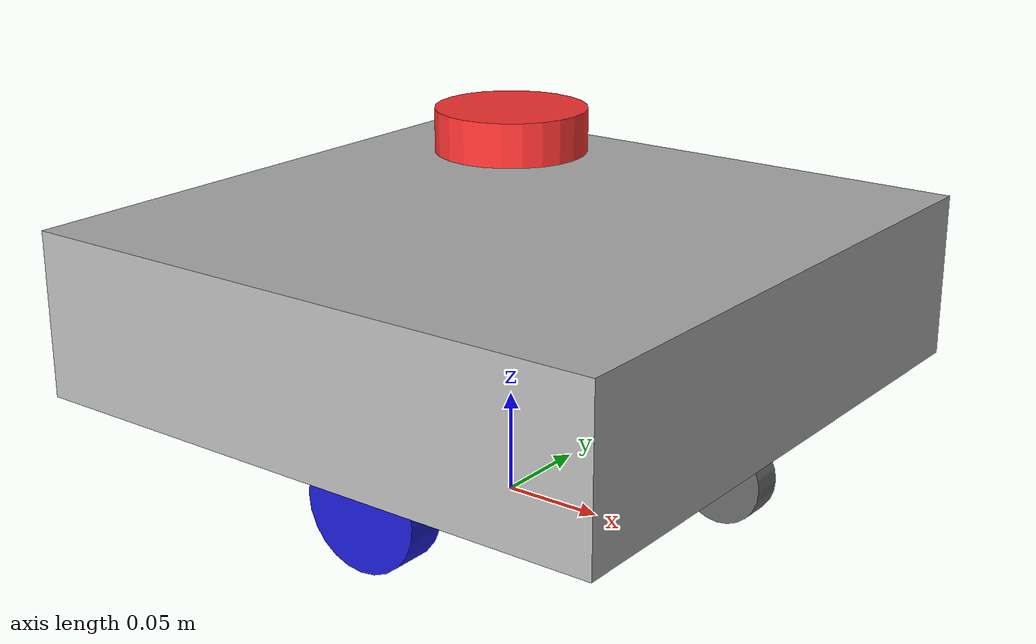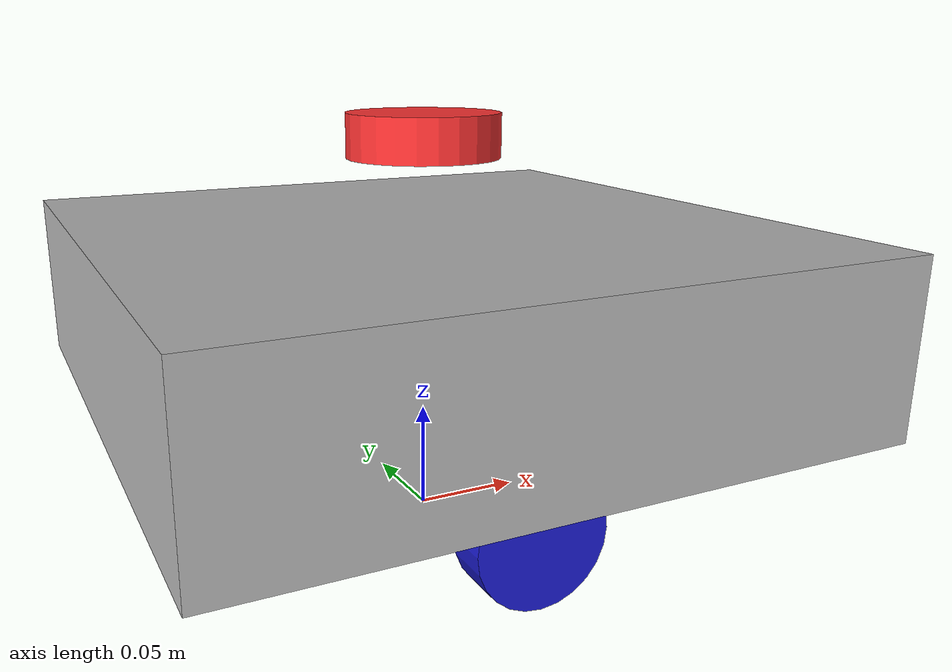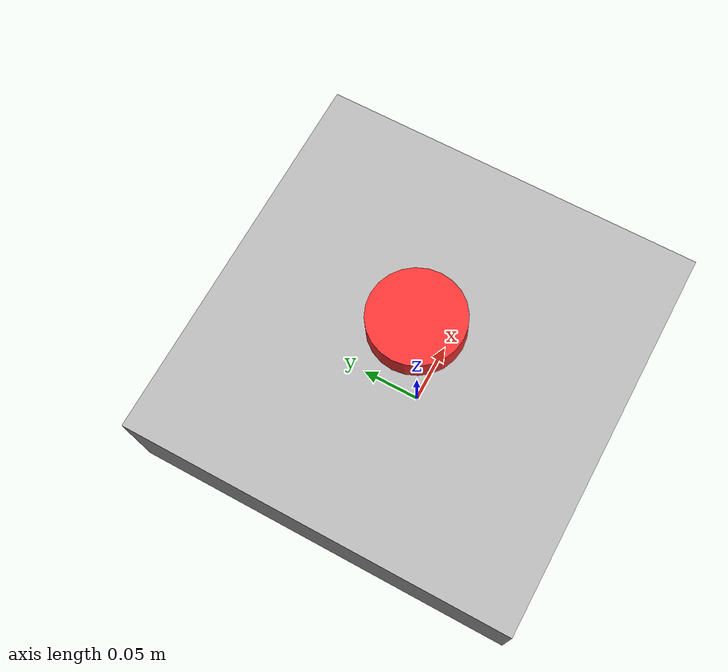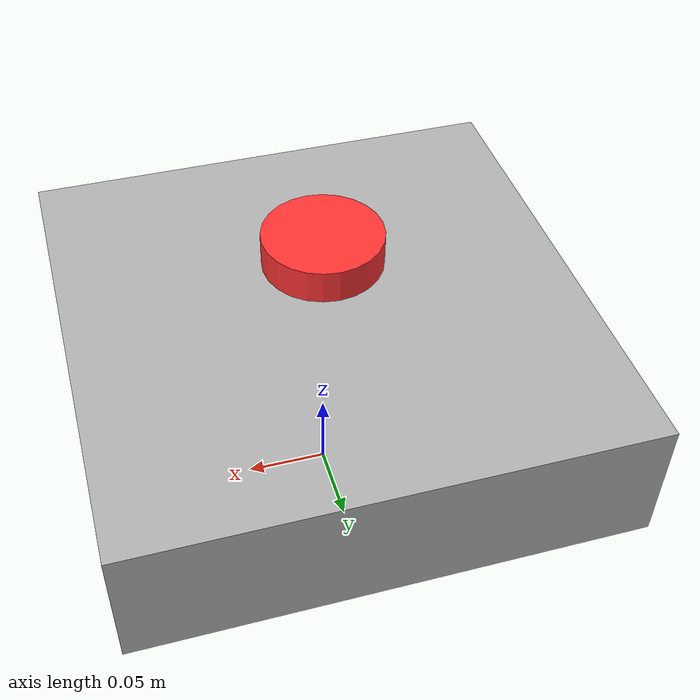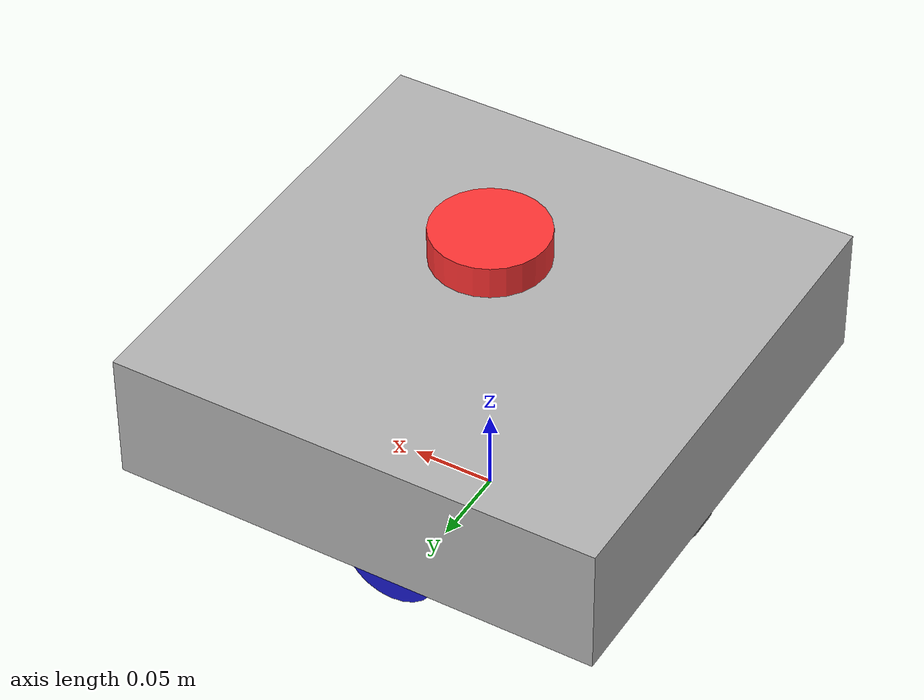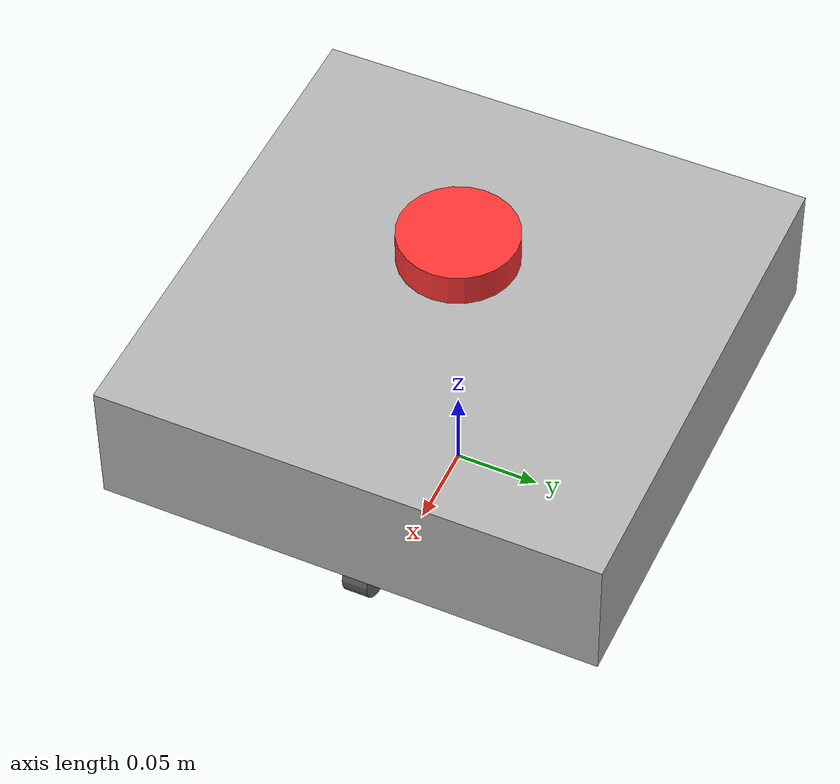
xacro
<?xml version="1.0"?>
<robot xmlns:xacro="http://wiki.ros.org/xacro" name="meamr">

  <!-- Parameters -->
  <xacro:property name="base_length" value="0.30" />
  <xacro:property name="base_width"  value="0.30" />
  <xacro:property name="base_height" value="0.08" />

  <xacro:property name="wheel_radius" value="0.03" />
  <xacro:property name="wheel_width"  value="0.02" />
  <xacro:property name="track_width"  value="0.20" />
  <xacro:property name="wheel_zoff"   value="0.03" />

  <xacro:property name="caster_radius" value="0.02" />
  <xacro:property name="caster_width"  value="0.015" />
  <xacro:property name="caster_zoff"   value="0.02" />
  <xacro:property name="caster_xoff"   value="0.12" />

  <xacro:property name="lidar_height" value="0.12" />

  <!-- 🔧 Macros -->
  <xacro:macro name="wheel" params="prefix y_reflect">
    <link name="${prefix}_link">
      <visual>
        <origin xyz="0 0 0" rpy="${pi/2} 0 0"/>
        <geometry>
          <cylinder radius="${wheel_radius}" length="${wheel_width}"/>
        </geometry>
        <material name="WheelColor">
          <color rgba="0.1 0.1 0.8 1.0"/>
        </material>
      </visual>
    </link>
    <joint name="${prefix}_joint" type="continuous">
      <parent link="meamr_base_link"/>
      <child link="${prefix}_link"/>
      <origin xyz="0 ${y_reflect * (track_width / 2)} ${-wheel_zoff}" rpy="0 0 0"/>
      <axis xyz="0 1 0"/>
    </joint>
  </xacro:macro>

  <xacro:macro name="caster" params="prefix x_reflect">
    <link name="${prefix}_link">
      <visual>
        <origin xyz="0 0 0" rpy="${pi/2} 0 0"/>
        <geometry>
          <cylinder radius="${caster_radius}" length="${caster_width}"/>
        </geometry>
        <material name="CasterColor">
          <color rgba="0.4 0.4 0.4 1.0"/>
        </material>
      </visual>
    </link>
    <joint name="${prefix}_joint" type="fixed">
      <parent link="meamr_base_link"/>
      <child link="${prefix}_link"/>
      <origin xyz="${x_reflect * caster_xoff} 0 ${-caster_zoff}" rpy="0 0 0"/>
    </joint>
  </xacro:macro>

  <!-- Base structure -->
  <link name="meamr_base_link">
    <visual>
      <origin xyz="0 0 ${0.5 * base_height}" rpy="0 0 0"/>
      <geometry>
        <box size="${base_length} ${base_width} ${base_height}"/>
      </geometry>
      <material name="ChassisColor">
        <color rgba="0.7 0.7 0.7 1.0"/>
      </material>
    </visual>
  </link>

  <link name="meamr_base_footprint"/>
  <joint name="meamr_base_joint" type="fixed">
    <parent link="meamr_base_footprint"/>
    <child link="meamr_base_link"/>
    <origin xyz="0 0 ${wheel_radius + wheel_zoff}" rpy="0 0 0"/>
  </joint>

  <!-- LiDAR -->
  <link name="meamr_lidar_link">
    <visual>
      <!-- ✅ 修正：不要再抬高 -->
      <geometry>
        <cylinder radius="0.035" length="0.02"/>
      </geometry>
      <material name="LidarColor">
        <color rgba="1 0.2 0.2 1.0"/>
      </material>
    </visual>
  </link>
  <joint name="meamr_lidar_joint" type="fixed">
    <parent link="meamr_base_link"/>
    <child link="meamr_lidar_link"/>
    <origin xyz="0 0 ${lidar_height}" rpy="0 0 0"/>
  </joint>

  <!--  Wheels -->
  <xacro:wheel prefix="meamr_left_wheel"  y_reflect=" 1"/>
  <xacro:wheel prefix="meamr_right_wheel" y_reflect="-1"/>

  <!--  Casters -->
  <xacro:caster prefix="meamr_front_caster" x_reflect=" 1"/>
  <xacro:caster prefix="meamr_rear_caster"  x_reflect="-1"/>

</robot>
